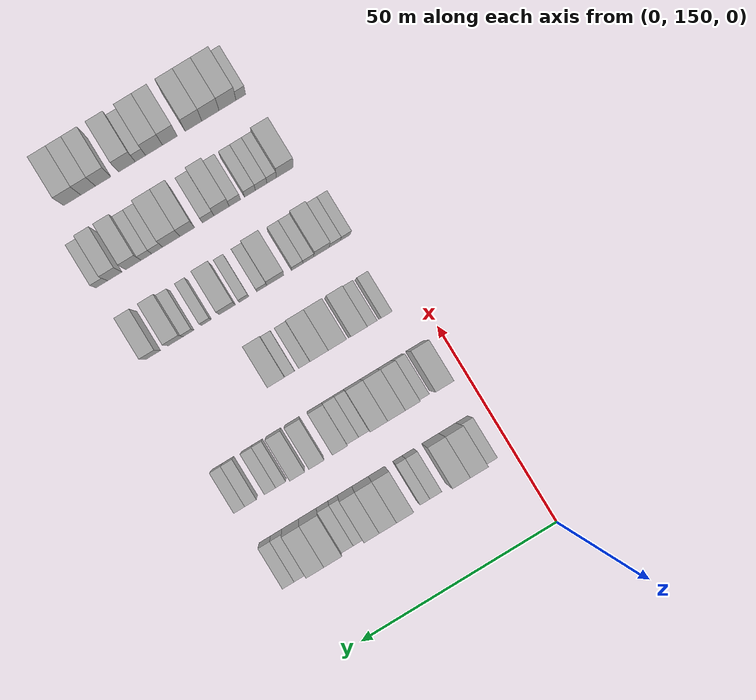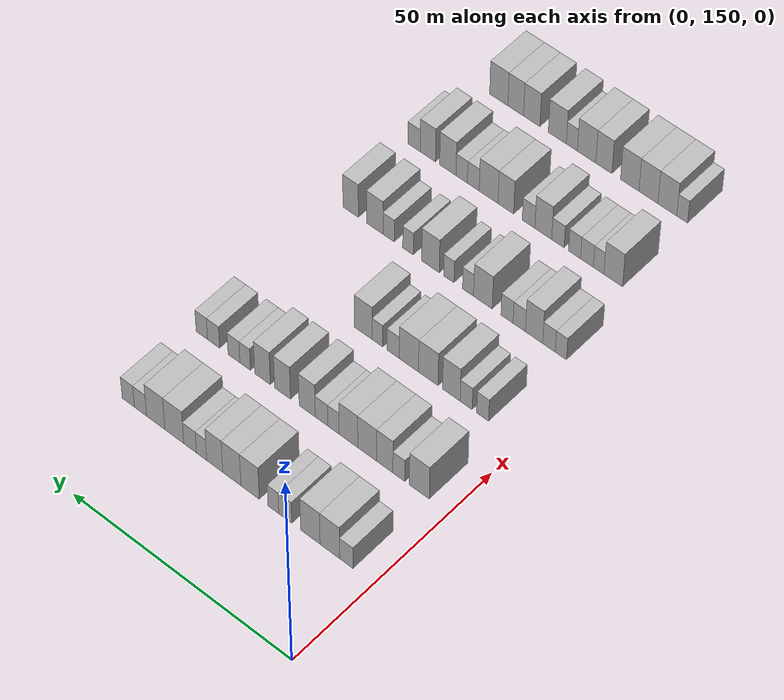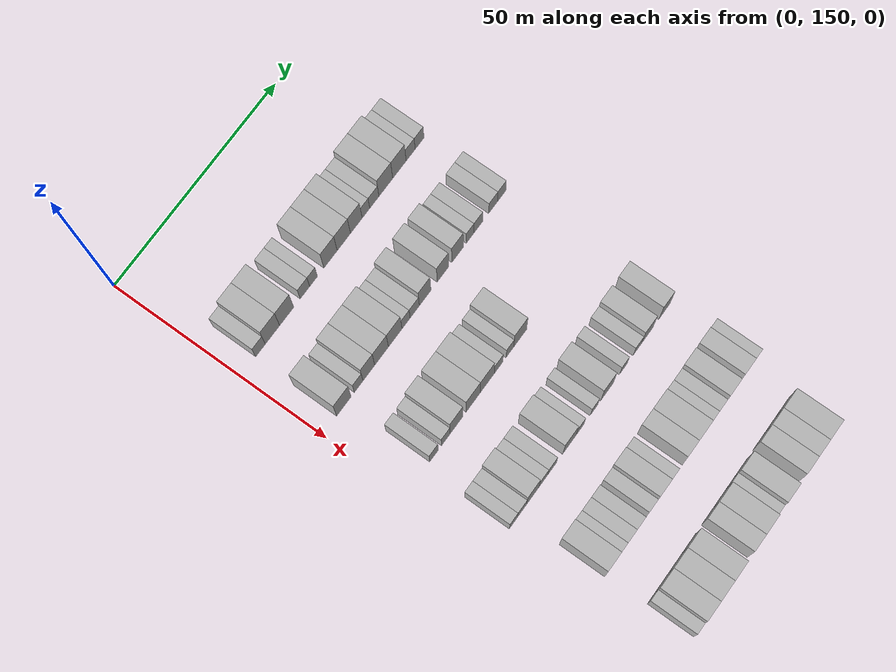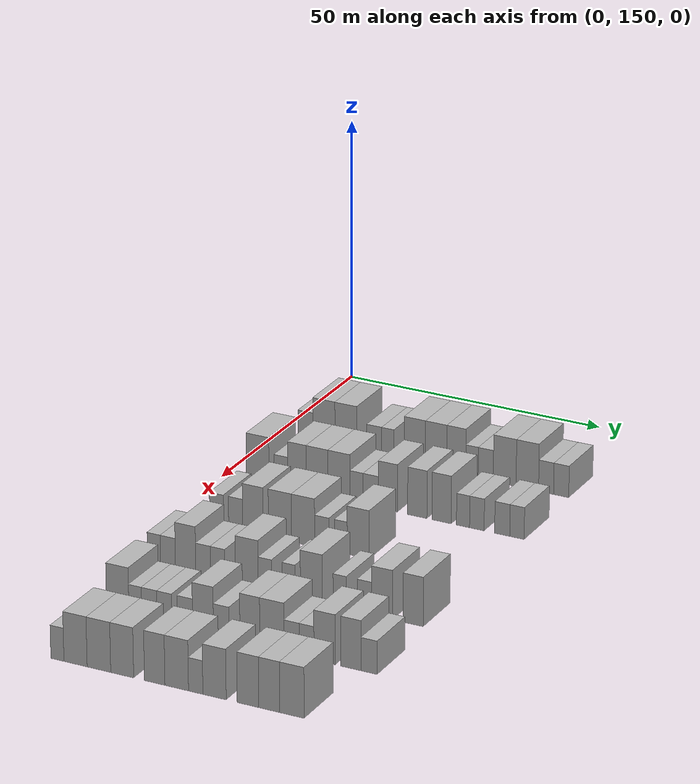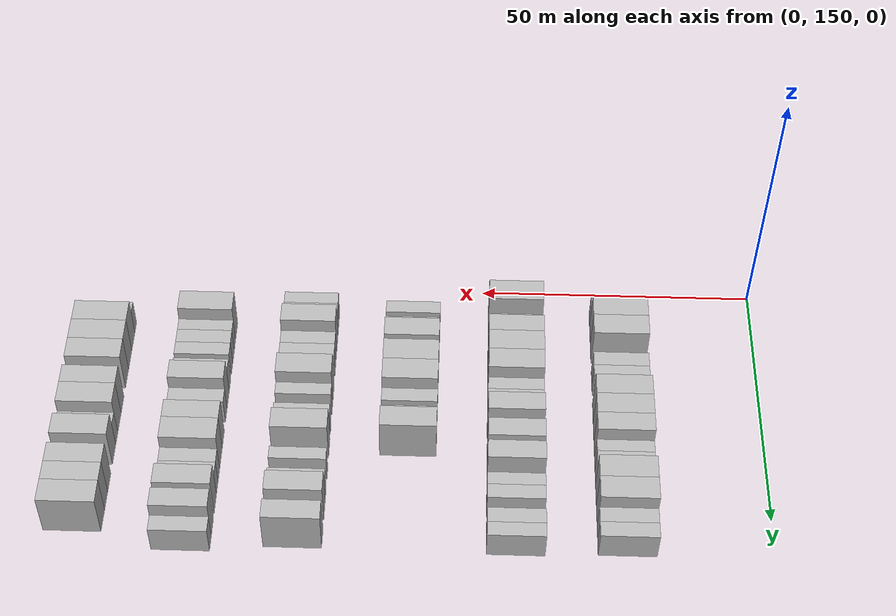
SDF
<sdf version="1.6">
 <world name="default">
  <model name="building_122">
   <static>1</static>
   <pose>25.0000 156.0968 0 0.000000 0.000000 0.000000</pose>
   <link name="link">
    <pose>0 0 3.00 0 0 0</pose>
    <collision name="collision"><geometry><box><size>10.0000 2.9768 6.0000</size></box></geometry></collision>
    <visual name="visual">
     <cast_shadows>0</cast_shadows>
     <geometry><box><size>10.0000 2.9768 6.0000</size></box></geometry>
     <material>
      <script>
       <uri>model://HANNAS_wall/materials/scripts</uri>
       <uri>model://HANNAS_wall/materials/textures</uri>
       <name>vrc/HANNAS_wall</name>
      </script>
     </material>
    </visual>
   </link>
  </model>
  <model name="building_123">
   <static>1</static>
   <pose>25.0000 159.7915 0 0.000000 0.000000 0.000000</pose>
   <link name="link">
    <pose>0 0 4.50 0 0 0</pose>
    <collision name="collision"><geometry><box><size>10.0000 4.4126 9.0000</size></box></geometry></collision>
    <visual name="visual">
     <cast_shadows>0</cast_shadows>
     <geometry><box><size>10.0000 4.4126 9.0000</size></box></geometry>
     <material>
      <script>
       <uri>model://HANNAS_wall/materials/scripts</uri>
       <uri>model://HANNAS_wall/materials/textures</uri>
       <name>vrc/HANNAS_wall</name>
      </script>
     </material>
    </visual>
   </link>
  </model>
  <model name="building_124">
   <static>1</static>
   <pose>25.0000 164.1842 0 0.000000 0.000000 0.000000</pose>
   <link name="link">
    <pose>0 0 4.50 0 0 0</pose>
    <collision name="collision"><geometry><box><size>10.0000 4.3728 9.0000</size></box></geometry></collision>
    <visual name="visual">
     <cast_shadows>0</cast_shadows>
     <geometry><box><size>10.0000 4.3728 9.0000</size></box></geometry>
     <material>
      <script>
       <uri>model://HANNAS_wall/materials/scripts</uri>
       <uri>model://HANNAS_wall/materials/textures</uri>
       <name>vrc/HANNAS_wall</name>
      </script>
     </material>
    </visual>
   </link>
  </model>
  <model name="building_125">
   <static>1</static>
   <pose>25.0000 169.8592 0 0.000000 0.000000 0.000000</pose>
   <link name="link">
    <pose>0 0 3.00 0 0 0</pose>
    <collision name="collision"><geometry><box><size>10.0000 2.9773 6.0000</size></box></geometry></collision>
    <visual name="visual">
     <cast_shadows>0</cast_shadows>
     <geometry><box><size>10.0000 2.9773 6.0000</size></box></geometry>
     <material>
      <script>
       <uri>model://HANNAS_wall/materials/scripts</uri>
       <uri>model://HANNAS_wall/materials/textures</uri>
       <name>vrc/HANNAS_wall</name>
      </script>
     </material>
    </visual>
   </link>
  </model>
  <model name="building_126">
   <static>1</static>
   <pose>25.0000 172.5687 0 0.000000 0.000000 0.000000</pose>
   <link name="link">
    <pose>0 0 3.00 0 0 0</pose>
    <collision name="collision"><geometry><box><size>10.0000 2.4417 6.0000</size></box></geometry></collision>
    <visual name="visual">
     <cast_shadows>0</cast_shadows>
     <geometry><box><size>10.0000 2.4417 6.0000</size></box></geometry>
     <material>
      <script>
       <uri>model://HANNAS_wall/materials/scripts</uri>
       <uri>model://HANNAS_wall/materials/textures</uri>
       <name>vrc/HANNAS_wall</name>
      </script>
     </material>
    </visual>
   </link>
  </model>
  <model name="building_127">
   <static>1</static>
   <pose>25.0000 177.8918 0 0.000000 0.000000 0.000000</pose>
   <link name="link">
    <pose>0 0 4.50 0 0 0</pose>
    <collision name="collision"><geometry><box><size>10.0000 4.2046 9.0000</size></box></geometry></collision>
    <visual name="visual">
     <cast_shadows>0</cast_shadows>
     <geometry><box><size>10.0000 4.2046 9.0000</size></box></geometry>
     <material>
      <script>
       <uri>model://HANNAS_wall/materials/scripts</uri>
       <uri>model://HANNAS_wall/materials/textures</uri>
       <name>vrc/HANNAS_wall</name>
      </script>
     </material>
    </visual>
   </link>
  </model>
  <model name="building_128">
   <static>1</static>
   <pose>25.0000 182.0966 0 0.000000 0.000000 0.000000</pose>
   <link name="link">
    <pose>0 0 4.50 0 0 0</pose>
    <collision name="collision"><geometry><box><size>10.0000 4.2050 9.0000</size></box></geometry></collision>
    <visual name="visual">
     <cast_shadows>0</cast_shadows>
     <geometry><box><size>10.0000 4.2050 9.0000</size></box></geometry>
     <material>
      <script>
       <uri>model://HANNAS_wall/materials/scripts</uri>
       <uri>model://HANNAS_wall/materials/textures</uri>
       <name>vrc/HANNAS_wall</name>
      </script>
     </material>
    </visual>
   </link>
  </model>
  <model name="building_129">
   <static>1</static>
   <pose>25.0000 186.0644 0 0.000000 0.000000 0.000000</pose>
   <link name="link">
    <pose>0 0 4.50 0 0 0</pose>
    <collision name="collision"><geometry><box><size>10.0000 3.7307 9.0000</size></box></geometry></collision>
    <visual name="visual">
     <cast_shadows>0</cast_shadows>
     <geometry><box><size>10.0000 3.7307 9.0000</size></box></geometry>
     <material>
      <script>
       <uri>model://HANNAS_wall/materials/scripts</uri>
       <uri>model://HANNAS_wall/materials/textures</uri>
       <name>vrc/HANNAS_wall</name>
      </script>
     </material>
    </visual>
   </link>
  </model>
  <model name="building_130">
   <static>1</static>
   <pose>25.0000 189.1353 0 0.000000 0.000000 0.000000</pose>
   <link name="link">
    <pose>0 0 3.00 0 0 0</pose>
    <collision name="collision"><geometry><box><size>10.0000 2.4113 6.0000</size></box></geometry></collision>
    <visual name="visual">
     <cast_shadows>0</cast_shadows>
     <geometry><box><size>10.0000 2.4113 6.0000</size></box></geometry>
     <material>
      <script>
       <uri>model://HANNAS_wall/materials/scripts</uri>
       <uri>model://HANNAS_wall/materials/textures</uri>
       <name>vrc/HANNAS_wall</name>
      </script>
     </material>
    </visual>
   </link>
  </model>
  <model name="building_131">
   <static>1</static>
   <pose>25.0000 191.8187 0 0.000000 0.000000 0.000000</pose>
   <link name="link">
    <pose>0 0 3.00 0 0 0</pose>
    <collision name="collision"><geometry><box><size>10.0000 2.9554 6.0000</size></box></geometry></collision>
    <visual name="visual">
     <cast_shadows>0</cast_shadows>
     <geometry><box><size>10.0000 2.9554 6.0000</size></box></geometry>
     <material>
      <script>
       <uri>model://HANNAS_wall/materials/scripts</uri>
       <uri>model://HANNAS_wall/materials/textures</uri>
       <name>vrc/HANNAS_wall</name>
      </script>
     </material>
    </visual>
   </link>
  </model>
  <model name="building_132">
   <static>1</static>
   <pose>25.0000 195.5114 0 0.000000 0.000000 0.000000</pose>
   <link name="link">
    <pose>0 0 4.50 0 0 0</pose>
    <collision name="collision"><geometry><box><size>10.0000 4.4300 9.0000</size></box></geometry></collision>
    <visual name="visual">
     <cast_shadows>0</cast_shadows>
     <geometry><box><size>10.0000 4.4300 9.0000</size></box></geometry>
     <material>
      <script>
       <uri>model://HANNAS_wall/materials/scripts</uri>
       <uri>model://HANNAS_wall/materials/textures</uri>
       <name>vrc/HANNAS_wall</name>
      </script>
     </material>
    </visual>
   </link>
  </model>
  <model name="building_133">
   <static>1</static>
   <pose>25.0000 199.8990 0 0.000000 0.000000 0.000000</pose>
   <link name="link">
    <pose>0 0 4.50 0 0 0</pose>
    <collision name="collision"><geometry><box><size>10.0000 4.3451 9.0000</size></box></geometry></collision>
    <visual name="visual">
     <cast_shadows>0</cast_shadows>
     <geometry><box><size>10.0000 4.3451 9.0000</size></box></geometry>
     <material>
      <script>
       <uri>model://HANNAS_wall/materials/scripts</uri>
       <uri>model://HANNAS_wall/materials/textures</uri>
       <name>vrc/HANNAS_wall</name>
      </script>
     </material>
    </visual>
   </link>
  </model>
  <model name="building_134">
   <static>1</static>
   <pose>25.0000 203.5275 0 0.000000 0.000000 0.000000</pose>
   <link name="link">
    <pose>0 0 3.00 0 0 0</pose>
    <collision name="collision"><geometry><box><size>10.0000 2.9119 6.0000</size></box></geometry></collision>
    <visual name="visual">
     <cast_shadows>0</cast_shadows>
     <geometry><box><size>10.0000 2.9119 6.0000</size></box></geometry>
     <material>
      <script>
       <uri>model://HANNAS_wall/materials/scripts</uri>
       <uri>model://HANNAS_wall/materials/textures</uri>
       <name>vrc/HANNAS_wall</name>
      </script>
     </material>
    </visual>
   </link>
  </model>
  <model name="building_135">
   <static>1</static>
   <pose>25.0000 206.4340 0 0.000000 0.000000 0.000000</pose>
   <link name="link">
    <pose>0 0 3.00 0 0 0</pose>
    <collision name="collision"><geometry><box><size>10.0000 2.9013 6.0000</size></box></geometry></collision>
    <visual name="visual">
     <cast_shadows>0</cast_shadows>
     <geometry><box><size>10.0000 2.9013 6.0000</size></box></geometry>
     <material>
      <script>
       <uri>model://HANNAS_wall/materials/scripts</uri>
       <uri>model://HANNAS_wall/materials/textures</uri>
       <name>vrc/HANNAS_wall</name>
      </script>
     </material>
    </visual>
   </link>
  </model>
  <model name="building_297">
   <static>1</static>
   <pose>44.0000 156.6351 0 0.000000 0.000000 0.000000</pose>
   <link name="link">
    <pose>0 0 4.50 0 0 0</pose>
    <collision name="collision"><geometry><box><size>10.0000 4.4826 9.0000</size></box></geometry></collision>
    <visual name="visual">
     <cast_shadows>0</cast_shadows>
     <geometry><box><size>10.0000 4.4826 9.0000</size></box></geometry>
     <material>
      <script>
       <uri>model://HANNAS_wall/materials/scripts</uri>
       <uri>model://HANNAS_wall/materials/textures</uri>
       <name>vrc/HANNAS_wall</name>
      </script>
     </material>
    </visual>
   </link>
  </model>
  <model name="building_298">
   <static>1</static>
   <pose>44.0000 161.2341 0 0.000000 0.000000 0.000000</pose>
   <link name="link">
    <pose>0 0 3.00 0 0 0</pose>
    <collision name="collision"><geometry><box><size>10.0000 2.7155 6.0000</size></box></geometry></collision>
    <visual name="visual">
     <cast_shadows>0</cast_shadows>
     <geometry><box><size>10.0000 2.7155 6.0000</size></box></geometry>
     <material>
      <script>
       <uri>model://HANNAS_wall/materials/scripts</uri>
       <uri>model://HANNAS_wall/materials/textures</uri>
       <name>vrc/HANNAS_wall</name>
      </script>
     </material>
    </visual>
   </link>
  </model>
  <model name="building_299">
   <static>1</static>
   <pose>44.0000 164.4146 0 0.000000 0.000000 0.000000</pose>
   <link name="link">
    <pose>0 0 4.50 0 0 0</pose>
    <collision name="collision"><geometry><box><size>10.0000 3.6454 9.0000</size></box></geometry></collision>
    <visual name="visual">
     <cast_shadows>0</cast_shadows>
     <geometry><box><size>10.0000 3.6454 9.0000</size></box></geometry>
     <material>
      <script>
       <uri>model://HANNAS_wall/materials/scripts</uri>
       <uri>model://HANNAS_wall/materials/textures</uri>
       <name>vrc/HANNAS_wall</name>
      </script>
     </material>
    </visual>
   </link>
  </model>
  <model name="building_300">
   <static>1</static>
   <pose>44.0000 168.3899 0 0.000000 0.000000 0.000000</pose>
   <link name="link">
    <pose>0 0 4.50 0 0 0</pose>
    <collision name="collision"><geometry><box><size>10.0000 4.3054 9.0000</size></box></geometry></collision>
    <visual name="visual">
     <cast_shadows>0</cast_shadows>
     <geometry><box><size>10.0000 4.3054 9.0000</size></box></geometry>
     <material>
      <script>
       <uri>model://HANNAS_wall/materials/scripts</uri>
       <uri>model://HANNAS_wall/materials/textures</uri>
       <name>vrc/HANNAS_wall</name>
      </script>
     </material>
    </visual>
   </link>
  </model>
  <model name="building_301">
   <static>1</static>
   <pose>44.0000 172.6813 0 0.000000 0.000000 0.000000</pose>
   <link name="link">
    <pose>0 0 4.50 0 0 0</pose>
    <collision name="collision"><geometry><box><size>10.0000 4.2774 9.0000</size></box></geometry></collision>
    <visual name="visual">
     <cast_shadows>0</cast_shadows>
     <geometry><box><size>10.0000 4.2774 9.0000</size></box></geometry>
     <material>
      <script>
       <uri>model://HANNAS_wall/materials/scripts</uri>
       <uri>model://HANNAS_wall/materials/textures</uri>
       <name>vrc/HANNAS_wall</name>
      </script>
     </material>
    </visual>
   </link>
  </model>
  <model name="building_302">
   <static>1</static>
   <pose>44.0000 176.1070 0 0.000000 0.000000 0.000000</pose>
   <link name="link">
    <pose>0 0 3.00 0 0 0</pose>
    <collision name="collision"><geometry><box><size>10.0000 2.5738 6.0000</size></box></geometry></collision>
    <visual name="visual">
     <cast_shadows>0</cast_shadows>
     <geometry><box><size>10.0000 2.5738 6.0000</size></box></geometry>
     <material>
      <script>
       <uri>model://HANNAS_wall/materials/scripts</uri>
       <uri>model://HANNAS_wall/materials/textures</uri>
       <name>vrc/HANNAS_wall</name>
      </script>
     </material>
    </visual>
   </link>
  </model>
  <model name="building_303">
   <static>1</static>
   <pose>44.0000 178.8618 0 0.000000 0.000000 0.000000</pose>
   <link name="link">
    <pose>0 0 3.00 0 0 0</pose>
    <collision name="collision"><geometry><box><size>10.0000 2.9358 6.0000</size></box></geometry></collision>
    <visual name="visual">
     <cast_shadows>0</cast_shadows>
     <geometry><box><size>10.0000 2.9358 6.0000</size></box></geometry>
     <material>
      <script>
       <uri>model://HANNAS_wall/materials/scripts</uri>
       <uri>model://HANNAS_wall/materials/textures</uri>
       <name>vrc/HANNAS_wall</name>
      </script>
     </material>
    </visual>
   </link>
  </model>
  <model name="building_304">
   <static>1</static>
   <pose>44.0000 182.1874 0 0.000000 0.000000 0.000000</pose>
   <link name="link">
    <pose>0 0 4.50 0 0 0</pose>
    <collision name="collision"><geometry><box><size>10.0000 3.7155 9.0000</size></box></geometry></collision>
    <visual name="visual">
     <cast_shadows>0</cast_shadows>
     <geometry><box><size>10.0000 3.7155 9.0000</size></box></geometry>
     <material>
      <script>
       <uri>model://HANNAS_wall/materials/scripts</uri>
       <uri>model://HANNAS_wall/materials/textures</uri>
       <name>vrc/HANNAS_wall</name>
      </script>
     </material>
    </visual>
   </link>
  </model>
  <model name="building_305">
   <static>1</static>
   <pose>44.0000 187.9041 0 0.000000 0.000000 0.000000</pose>
   <link name="link">
    <pose>0 0 4.50 0 0 0</pose>
    <collision name="collision"><geometry><box><size>10.0000 3.7179 9.0000</size></box></geometry></collision>
    <visual name="visual">
     <cast_shadows>0</cast_shadows>
     <geometry><box><size>10.0000 3.7179 9.0000</size></box></geometry>
     <material>
      <script>
       <uri>model://HANNAS_wall/materials/scripts</uri>
       <uri>model://HANNAS_wall/materials/textures</uri>
       <name>vrc/HANNAS_wall</name>
      </script>
     </material>
    </visual>
   </link>
  </model>
  <model name="building_306">
   <static>1</static>
   <pose>44.0000 192.6039 0 0.000000 0.000000 0.000000</pose>
   <link name="link">
    <pose>0 0 4.50 0 0 0</pose>
    <collision name="collision"><geometry><box><size>10.0000 3.6816 9.0000</size></box></geometry></collision>
    <visual name="visual">
     <cast_shadows>0</cast_shadows>
     <geometry><box><size>10.0000 3.6816 9.0000</size></box></geometry>
     <material>
      <script>
       <uri>model://HANNAS_wall/materials/scripts</uri>
       <uri>model://HANNAS_wall/materials/textures</uri>
       <name>vrc/HANNAS_wall</name>
      </script>
     </material>
    </visual>
   </link>
  </model>
  <model name="building_307">
   <static>1</static>
   <pose>44.0000 196.6941 0 0.000000 0.000000 0.000000</pose>
   <link name="link">
    <pose>0 0 3.00 0 0 0</pose>
    <collision name="collision"><geometry><box><size>10.0000 2.4988 6.0000</size></box></geometry></collision>
    <visual name="visual">
     <cast_shadows>0</cast_shadows>
     <geometry><box><size>10.0000 2.4988 6.0000</size></box></geometry>
     <material>
      <script>
       <uri>model://HANNAS_wall/materials/scripts</uri>
       <uri>model://HANNAS_wall/materials/textures</uri>
       <name>vrc/HANNAS_wall</name>
      </script>
     </material>
    </visual>
   </link>
  </model>
  <model name="building_308">
   <static>1</static>
   <pose>44.0000 199.3420 0 0.000000 0.000000 0.000000</pose>
   <link name="link">
    <pose>0 0 3.00 0 0 0</pose>
    <collision name="collision"><geometry><box><size>10.0000 2.7969 6.0000</size></box></geometry></collision>
    <visual name="visual">
     <cast_shadows>0</cast_shadows>
     <geometry><box><size>10.0000 2.7969 6.0000</size></box></geometry>
     <material>
      <script>
       <uri>model://HANNAS_wall/materials/scripts</uri>
       <uri>model://HANNAS_wall/materials/textures</uri>
       <name>vrc/HANNAS_wall</name>
      </script>
     </material>
    </visual>
   </link>
  </model>
  <model name="building_309">
   <static>1</static>
   <pose>44.0000 204.1811 0 0.000000 0.000000 0.000000</pose>
   <link name="link">
    <pose>0 0 3.00 0 0 0</pose>
    <collision name="collision"><geometry><box><size>10.0000 2.8813 6.0000</size></box></geometry></collision>
    <visual name="visual">
     <cast_shadows>0</cast_shadows>
     <geometry><box><size>10.0000 2.8813 6.0000</size></box></geometry>
     <material>
      <script>
       <uri>model://HANNAS_wall/materials/scripts</uri>
       <uri>model://HANNAS_wall/materials/textures</uri>
       <name>vrc/HANNAS_wall</name>
      </script>
     </material>
    </visual>
   </link>
  </model>
  <model name="building_310">
   <static>1</static>
   <pose>44.0000 206.9830 0 0.000000 0.000000 0.000000</pose>
   <link name="link">
    <pose>0 0 3.00 0 0 0</pose>
    <collision name="collision"><geometry><box><size>10.0000 2.7226 6.0000</size></box></geometry></collision>
    <visual name="visual">
     <cast_shadows>0</cast_shadows>
     <geometry><box><size>10.0000 2.7226 6.0000</size></box></geometry>
     <material>
      <script>
       <uri>model://HANNAS_wall/materials/scripts</uri>
       <uri>model://HANNAS_wall/materials/textures</uri>
       <name>vrc/HANNAS_wall</name>
      </script>
     </material>
    </visual>
   </link>
  </model>
  <model name="building_471">
   <static>1</static>
   <pose>63.0000 158.8477 0 0.000000 0.000000 0.000000</pose>
   <link name="link">
    <pose>0 0 3.00 0 0 0</pose>
    <collision name="collision"><geometry><box><size>10.0000 2.7128 6.0000</size></box></geometry></collision>
    <visual name="visual">
     <cast_shadows>0</cast_shadows>
     <geometry><box><size>10.0000 2.7128 6.0000</size></box></geometry>
     <material>
      <script>
       <uri>model://HANNAS_wall/materials/scripts</uri>
       <uri>model://HANNAS_wall/materials/textures</uri>
       <name>vrc/HANNAS_wall</name>
      </script>
     </material>
    </visual>
   </link>
  </model>
  <model name="building_472">
   <static>1</static>
   <pose>63.0000 162.5668 0 0.000000 0.000000 0.000000</pose>
   <link name="link">
    <pose>0 0 3.00 0 0 0</pose>
    <collision name="collision"><geometry><box><size>10.0000 2.7254 6.0000</size></box></geometry></collision>
    <visual name="visual">
     <cast_shadows>0</cast_shadows>
     <geometry><box><size>10.0000 2.7254 6.0000</size></box></geometry>
     <material>
      <script>
       <uri>model://HANNAS_wall/materials/scripts</uri>
       <uri>model://HANNAS_wall/materials/textures</uri>
       <name>vrc/HANNAS_wall</name>
      </script>
     </material>
    </visual>
   </link>
  </model>
  <model name="building_473">
   <static>1</static>
   <pose>63.0000 165.9402 0 0.000000 0.000000 0.000000</pose>
   <link name="link">
    <pose>0 0 4.50 0 0 0</pose>
    <collision name="collision"><geometry><box><size>10.0000 4.0216 9.0000</size></box></geometry></collision>
    <visual name="visual">
     <cast_shadows>0</cast_shadows>
     <geometry><box><size>10.0000 4.0216 9.0000</size></box></geometry>
     <material>
      <script>
       <uri>model://HANNAS_wall/materials/scripts</uri>
       <uri>model://HANNAS_wall/materials/textures</uri>
       <name>vrc/HANNAS_wall</name>
      </script>
     </material>
    </visual>
   </link>
  </model>
  <model name="building_474">
   <static>1</static>
   <pose>63.0000 171.1912 0 0.000000 0.000000 0.000000</pose>
   <link name="link">
    <pose>0 0 4.50 0 0 0</pose>
    <collision name="collision"><geometry><box><size>10.0000 4.4805 9.0000</size></box></geometry></collision>
    <visual name="visual">
     <cast_shadows>0</cast_shadows>
     <geometry><box><size>10.0000 4.4805 9.0000</size></box></geometry>
     <material>
      <script>
       <uri>model://HANNAS_wall/materials/scripts</uri>
       <uri>model://HANNAS_wall/materials/textures</uri>
       <name>vrc/HANNAS_wall</name>
      </script>
     </material>
    </visual>
   </link>
  </model>
  <model name="building_475">
   <static>1</static>
   <pose>63.0000 175.6522 0 0.000000 0.000000 0.000000</pose>
   <link name="link">
    <pose>0 0 4.50 0 0 0</pose>
    <collision name="collision"><geometry><box><size>10.0000 4.4414 9.0000</size></box></geometry></collision>
    <visual name="visual">
     <cast_shadows>0</cast_shadows>
     <geometry><box><size>10.0000 4.4414 9.0000</size></box></geometry>
     <material>
      <script>
       <uri>model://HANNAS_wall/materials/scripts</uri>
       <uri>model://HANNAS_wall/materials/textures</uri>
       <name>vrc/HANNAS_wall</name>
      </script>
     </material>
    </visual>
   </link>
  </model>
  <model name="building_476">
   <static>1</static>
   <pose>63.0000 179.2714 0 0.000000 0.000000 0.000000</pose>
   <link name="link">
    <pose>0 0 3.00 0 0 0</pose>
    <collision name="collision"><geometry><box><size>10.0000 2.7970 6.0000</size></box></geometry></collision>
    <visual name="visual">
     <cast_shadows>0</cast_shadows>
     <geometry><box><size>10.0000 2.7970 6.0000</size></box></geometry>
     <material>
      <script>
       <uri>model://HANNAS_wall/materials/scripts</uri>
       <uri>model://HANNAS_wall/materials/textures</uri>
       <name>vrc/HANNAS_wall</name>
      </script>
     </material>
    </visual>
   </link>
  </model>
  <model name="building_477">
   <static>1</static>
   <pose>63.0000 182.8991 0 0.000000 0.000000 0.000000</pose>
   <link name="link">
    <pose>0 0 3.00 0 0 0</pose>
    <collision name="collision"><geometry><box><size>10.0000 2.4584 6.0000</size></box></geometry></collision>
    <visual name="visual">
     <cast_shadows>0</cast_shadows>
     <geometry><box><size>10.0000 2.4584 6.0000</size></box></geometry>
     <material>
      <script>
       <uri>model://HANNAS_wall/materials/scripts</uri>
       <uri>model://HANNAS_wall/materials/textures</uri>
       <name>vrc/HANNAS_wall</name>
      </script>
     </material>
    </visual>
   </link>
  </model>
  <model name="building_478">
   <static>1</static>
   <pose>63.0000 186.2223 0 0.000000 0.000000 0.000000</pose>
   <link name="link">
    <pose>0 0 4.50 0 0 0</pose>
    <collision name="collision"><geometry><box><size>10.0000 4.1879 9.0000</size></box></geometry></collision>
    <visual name="visual">
     <cast_shadows>0</cast_shadows>
     <geometry><box><size>10.0000 4.1879 9.0000</size></box></geometry>
     <material>
      <script>
       <uri>model://HANNAS_wall/materials/scripts</uri>
       <uri>model://HANNAS_wall/materials/textures</uri>
       <name>vrc/HANNAS_wall</name>
      </script>
     </material>
    </visual>
   </link>
  </model>
  <model name="building_642">
   <static>1</static>
   <pose>82.0000 157.2323 0 0.000000 0.000000 0.000000</pose>
   <link name="link">
    <pose>0 0 3.00 0 0 0</pose>
    <collision name="collision"><geometry><box><size>10.0000 2.5330 6.0000</size></box></geometry></collision>
    <visual name="visual">
     <cast_shadows>0</cast_shadows>
     <geometry><box><size>10.0000 2.5330 6.0000</size></box></geometry>
     <material>
      <script>
       <uri>model://HANNAS_wall/materials/scripts</uri>
       <uri>model://HANNAS_wall/materials/textures</uri>
       <name>vrc/HANNAS_wall</name>
      </script>
     </material>
    </visual>
   </link>
  </model>
  <model name="building_643">
   <static>1</static>
   <pose>82.0000 159.9286 0 0.000000 0.000000 0.000000</pose>
   <link name="link">
    <pose>0 0 3.00 0 0 0</pose>
    <collision name="collision"><geometry><box><size>10.0000 2.8596 6.0000</size></box></geometry></collision>
    <visual name="visual">
     <cast_shadows>0</cast_shadows>
     <geometry><box><size>10.0000 2.8596 6.0000</size></box></geometry>
     <material>
      <script>
       <uri>model://HANNAS_wall/materials/scripts</uri>
       <uri>model://HANNAS_wall/materials/textures</uri>
       <name>vrc/HANNAS_wall</name>
      </script>
     </material>
    </visual>
   </link>
  </model>
  <model name="building_644">
   <static>1</static>
   <pose>82.0000 163.3198 0 0.000000 0.000000 0.000000</pose>
   <link name="link">
    <pose>0 0 4.50 0 0 0</pose>
    <collision name="collision"><geometry><box><size>10.0000 3.9228 9.0000</size></box></geometry></collision>
    <visual name="visual">
     <cast_shadows>0</cast_shadows>
     <geometry><box><size>10.0000 3.9228 9.0000</size></box></geometry>
     <material>
      <script>
       <uri>model://HANNAS_wall/materials/scripts</uri>
       <uri>model://HANNAS_wall/materials/textures</uri>
       <name>vrc/HANNAS_wall</name>
      </script>
     </material>
    </visual>
   </link>
  </model>
  <model name="building_645">
   <static>1</static>
   <pose>82.0000 166.6924 0 0.000000 0.000000 0.000000</pose>
   <link name="link">
    <pose>0 0 3.00 0 0 0</pose>
    <collision name="collision"><geometry><box><size>10.0000 2.8223 6.0000</size></box></geometry></collision>
    <visual name="visual">
     <cast_shadows>0</cast_shadows>
     <geometry><box><size>10.0000 2.8223 6.0000</size></box></geometry>
     <material>
      <script>
       <uri>model://HANNAS_wall/materials/scripts</uri>
       <uri>model://HANNAS_wall/materials/textures</uri>
       <name>vrc/HANNAS_wall</name>
      </script>
     </material>
    </visual>
   </link>
  </model>
  <model name="building_646">
   <static>1</static>
   <pose>82.0000 169.4991 0 0.000000 0.000000 0.000000</pose>
   <link name="link">
    <pose>0 0 3.00 0 0 0</pose>
    <collision name="collision"><geometry><box><size>10.0000 2.7911 6.0000</size></box></geometry></collision>
    <visual name="visual">
     <cast_shadows>0</cast_shadows>
     <geometry><box><size>10.0000 2.7911 6.0000</size></box></geometry>
     <material>
      <script>
       <uri>model://HANNAS_wall/materials/scripts</uri>
       <uri>model://HANNAS_wall/materials/textures</uri>
       <name>vrc/HANNAS_wall</name>
      </script>
     </material>
    </visual>
   </link>
  </model>
  <model name="building_647">
   <static>1</static>
   <pose>82.0000 175.0517 0 0.000000 0.000000 0.000000</pose>
   <link name="link">
    <pose>0 0 4.50 0 0 0</pose>
    <collision name="collision"><geometry><box><size>10.0000 4.3142 9.0000</size></box></geometry></collision>
    <visual name="visual">
     <cast_shadows>0</cast_shadows>
     <geometry><box><size>10.0000 4.3142 9.0000</size></box></geometry>
     <material>
      <script>
       <uri>model://HANNAS_wall/materials/scripts</uri>
       <uri>model://HANNAS_wall/materials/textures</uri>
       <name>vrc/HANNAS_wall</name>
      </script>
     </material>
    </visual>
   </link>
  </model>
  <model name="building_648">
   <static>1</static>
   <pose>82.0000 178.4894 0 0.000000 0.000000 0.000000</pose>
   <link name="link">
    <pose>0 0 3.00 0 0 0</pose>
    <collision name="collision"><geometry><box><size>10.0000 2.5612 6.0000</size></box></geometry></collision>
    <visual name="visual">
     <cast_shadows>0</cast_shadows>
     <geometry><box><size>10.0000 2.5612 6.0000</size></box></geometry>
     <material>
      <script>
       <uri>model://HANNAS_wall/materials/scripts</uri>
       <uri>model://HANNAS_wall/materials/textures</uri>
       <name>vrc/HANNAS_wall</name>
      </script>
     </material>
    </visual>
   </link>
  </model>
  <model name="building_649">
   <static>1</static>
   <pose>82.0000 182.9759 0 0.000000 0.000000 0.000000</pose>
   <link name="link">
    <pose>0 0 3.00 0 0 0</pose>
    <collision name="collision"><geometry><box><size>10.0000 2.4117 6.0000</size></box></geometry></collision>
    <visual name="visual">
     <cast_shadows>0</cast_shadows>
     <geometry><box><size>10.0000 2.4117 6.0000</size></box></geometry>
     <material>
      <script>
       <uri>model://HANNAS_wall/materials/scripts</uri>
       <uri>model://HANNAS_wall/materials/textures</uri>
       <name>vrc/HANNAS_wall</name>
      </script>
     </material>
    </visual>
   </link>
  </model>
  <model name="building_650">
   <static>1</static>
   <pose>82.0000 187.2466 0 0.000000 0.000000 0.000000</pose>
   <link name="link">
    <pose>0 0 4.50 0 0 0</pose>
    <collision name="collision"><geometry><box><size>10.0000 4.1299 9.0000</size></box></geometry></collision>
    <visual name="visual">
     <cast_shadows>0</cast_shadows>
     <geometry><box><size>10.0000 4.1299 9.0000</size></box></geometry>
     <material>
      <script>
       <uri>model://HANNAS_wall/materials/scripts</uri>
       <uri>model://HANNAS_wall/materials/textures</uri>
       <name>vrc/HANNAS_wall</name>
      </script>
     </material>
    </visual>
   </link>
  </model>
  <model name="building_651">
   <static>1</static>
   <pose>82.0000 192.5561 0 0.000000 0.000000 0.000000</pose>
   <link name="link">
    <pose>0 0 3.00 0 0 0</pose>
    <collision name="collision"><geometry><box><size>10.0000 2.4890 6.0000</size></box></geometry></collision>
    <visual name="visual">
     <cast_shadows>0</cast_shadows>
     <geometry><box><size>10.0000 2.4890 6.0000</size></box></geometry>
     <material>
      <script>
       <uri>model://HANNAS_wall/materials/scripts</uri>
       <uri>model://HANNAS_wall/materials/textures</uri>
       <name>vrc/HANNAS_wall</name>
      </script>
     </material>
    </visual>
   </link>
  </model>
  <model name="building_652">
   <static>1</static>
   <pose>82.0000 197.1388 0 0.000000 0.000000 0.000000</pose>
   <link name="link">
    <pose>0 0 3.00 0 0 0</pose>
    <collision name="collision"><geometry><box><size>10.0000 2.6766 6.0000</size></box></geometry></collision>
    <visual name="visual">
     <cast_shadows>0</cast_shadows>
     <geometry><box><size>10.0000 2.6766 6.0000</size></box></geometry>
     <material>
      <script>
       <uri>model://HANNAS_wall/materials/scripts</uri>
       <uri>model://HANNAS_wall/materials/textures</uri>
       <name>vrc/HANNAS_wall</name>
      </script>
     </material>
    </visual>
   </link>
  </model>
  <model name="building_653">
   <static>1</static>
   <pose>82.0000 200.4156 0 0.000000 0.000000 0.000000</pose>
   <link name="link">
    <pose>0 0 4.50 0 0 0</pose>
    <collision name="collision"><geometry><box><size>10.0000 3.8769 9.0000</size></box></geometry></collision>
    <visual name="visual">
     <cast_shadows>0</cast_shadows>
     <geometry><box><size>10.0000 3.8769 9.0000</size></box></geometry>
     <material>
      <script>
       <uri>model://HANNAS_wall/materials/scripts</uri>
       <uri>model://HANNAS_wall/materials/textures</uri>
       <name>vrc/HANNAS_wall</name>
      </script>
     </material>
    </visual>
   </link>
  </model>
  <model name="building_654">
   <static>1</static>
   <pose>82.0000 206.2035 0 0.000000 0.000000 0.000000</pose>
   <link name="link">
    <pose>0 0 4.50 0 0 0</pose>
    <collision name="collision"><geometry><box><size>10.0000 3.6989 9.0000</size></box></geometry></collision>
    <visual name="visual">
     <cast_shadows>0</cast_shadows>
     <geometry><box><size>10.0000 3.6989 9.0000</size></box></geometry>
     <material>
      <script>
       <uri>model://HANNAS_wall/materials/scripts</uri>
       <uri>model://HANNAS_wall/materials/textures</uri>
       <name>vrc/HANNAS_wall</name>
      </script>
     </material>
    </visual>
   </link>
  </model>
  <model name="building_810">
   <static>1</static>
   <pose>101.0000 161.0667 0 0.000000 0.000000 0.000000</pose>
   <link name="link">
    <pose>0 0 4.50 0 0 0</pose>
    <collision name="collision"><geometry><box><size>10.0000 4.2431 9.0000</size></box></geometry></collision>
    <visual name="visual">
     <cast_shadows>0</cast_shadows>
     <geometry><box><size>10.0000 4.2431 9.0000</size></box></geometry>
     <material>
      <script>
       <uri>model://HANNAS_wall/materials/scripts</uri>
       <uri>model://HANNAS_wall/materials/textures</uri>
       <name>vrc/HANNAS_wall</name>
      </script>
     </material>
    </visual>
   </link>
  </model>
  <model name="building_811">
   <static>1</static>
   <pose>101.0000 164.4001 0 0.000000 0.000000 0.000000</pose>
   <link name="link">
    <pose>0 0 3.00 0 0 0</pose>
    <collision name="collision"><geometry><box><size>10.0000 2.4239 6.0000</size></box></geometry></collision>
    <visual name="visual">
     <cast_shadows>0</cast_shadows>
     <geometry><box><size>10.0000 2.4239 6.0000</size></box></geometry>
     <material>
      <script>
       <uri>model://HANNAS_wall/materials/scripts</uri>
       <uri>model://HANNAS_wall/materials/textures</uri>
       <name>vrc/HANNAS_wall</name>
      </script>
     </material>
    </visual>
   </link>
  </model>
  <model name="building_812">
   <static>1</static>
   <pose>101.0000 167.0691 0 0.000000 0.000000 0.000000</pose>
   <link name="link">
    <pose>0 0 3.00 0 0 0</pose>
    <collision name="collision"><geometry><box><size>10.0000 2.9141 6.0000</size></box></geometry></collision>
    <visual name="visual">
     <cast_shadows>0</cast_shadows>
     <geometry><box><size>10.0000 2.9141 6.0000</size></box></geometry>
     <material>
      <script>
       <uri>model://HANNAS_wall/materials/scripts</uri>
       <uri>model://HANNAS_wall/materials/textures</uri>
       <name>vrc/HANNAS_wall</name>
      </script>
     </material>
    </visual>
   </link>
  </model>
  <model name="building_813">
   <static>1</static>
   <pose>101.0000 169.9203 0 0.000000 0.000000 0.000000</pose>
   <link name="link">
    <pose>0 0 3.00 0 0 0</pose>
    <collision name="collision"><geometry><box><size>10.0000 2.7881 6.0000</size></box></geometry></collision>
    <visual name="visual">
     <cast_shadows>0</cast_shadows>
     <geometry><box><size>10.0000 2.7881 6.0000</size></box></geometry>
     <material>
      <script>
       <uri>model://HANNAS_wall/materials/scripts</uri>
       <uri>model://HANNAS_wall/materials/textures</uri>
       <name>vrc/HANNAS_wall</name>
      </script>
     </material>
    </visual>
   </link>
  </model>
  <model name="building_814">
   <static>1</static>
   <pose>101.0000 173.7635 0 0.000000 0.000000 0.000000</pose>
   <link name="link">
    <pose>0 0 3.00 0 0 0</pose>
    <collision name="collision"><geometry><box><size>10.0000 2.8983 6.0000</size></box></geometry></collision>
    <visual name="visual">
     <cast_shadows>0</cast_shadows>
     <geometry><box><size>10.0000 2.8983 6.0000</size></box></geometry>
     <material>
      <script>
       <uri>model://HANNAS_wall/materials/scripts</uri>
       <uri>model://HANNAS_wall/materials/textures</uri>
       <name>vrc/HANNAS_wall</name>
      </script>
     </material>
    </visual>
   </link>
  </model>
  <model name="building_815">
   <static>1</static>
   <pose>101.0000 177.1648 0 0.000000 0.000000 0.000000</pose>
   <link name="link">
    <pose>0 0 4.50 0 0 0</pose>
    <collision name="collision"><geometry><box><size>10.0000 3.9043 9.0000</size></box></geometry></collision>
    <visual name="visual">
     <cast_shadows>0</cast_shadows>
     <geometry><box><size>10.0000 3.9043 9.0000</size></box></geometry>
     <material>
      <script>
       <uri>model://HANNAS_wall/materials/scripts</uri>
       <uri>model://HANNAS_wall/materials/textures</uri>
       <name>vrc/HANNAS_wall</name>
      </script>
     </material>
    </visual>
   </link>
  </model>
  <model name="building_816">
   <static>1</static>
   <pose>101.0000 180.5873 0 0.000000 0.000000 0.000000</pose>
   <link name="link">
    <pose>0 0 3.00 0 0 0</pose>
    <collision name="collision"><geometry><box><size>10.0000 2.9407 6.0000</size></box></geometry></collision>
    <visual name="visual">
     <cast_shadows>0</cast_shadows>
     <geometry><box><size>10.0000 2.9407 6.0000</size></box></geometry>
     <material>
      <script>
       <uri>model://HANNAS_wall/materials/scripts</uri>
       <uri>model://HANNAS_wall/materials/textures</uri>
       <name>vrc/HANNAS_wall</name>
      </script>
     </material>
    </visual>
   </link>
  </model>
  <model name="building_817">
   <static>1</static>
   <pose>101.0000 185.9001 0 0.000000 0.000000 0.000000</pose>
   <link name="link">
    <pose>0 0 4.50 0 0 0</pose>
    <collision name="collision"><geometry><box><size>10.0000 3.6850 9.0000</size></box></geometry></collision>
    <visual name="visual">
     <cast_shadows>0</cast_shadows>
     <geometry><box><size>10.0000 3.6850 9.0000</size></box></geometry>
     <material>
      <script>
       <uri>model://HANNAS_wall/materials/scripts</uri>
       <uri>model://HANNAS_wall/materials/textures</uri>
       <name>vrc/HANNAS_wall</name>
      </script>
     </material>
    </visual>
   </link>
  </model>
  <model name="building_818">
   <static>1</static>
   <pose>101.0000 189.9728 0 0.000000 0.000000 0.000000</pose>
   <link name="link">
    <pose>0 0 4.50 0 0 0</pose>
    <collision name="collision"><geometry><box><size>10.0000 4.4603 9.0000</size></box></geometry></collision>
    <visual name="visual">
     <cast_shadows>0</cast_shadows>
     <geometry><box><size>10.0000 4.4603 9.0000</size></box></geometry>
     <material>
      <script>
       <uri>model://HANNAS_wall/materials/scripts</uri>
       <uri>model://HANNAS_wall/materials/textures</uri>
       <name>vrc/HANNAS_wall</name>
      </script>
     </material>
    </visual>
   </link>
  </model>
  <model name="building_819">
   <static>1</static>
   <pose>101.0000 193.6024 0 0.000000 0.000000 0.000000</pose>
   <link name="link">
    <pose>0 0 3.00 0 0 0</pose>
    <collision name="collision"><geometry><box><size>10.0000 2.7989 6.0000</size></box></geometry></collision>
    <visual name="visual">
     <cast_shadows>0</cast_shadows>
     <geometry><box><size>10.0000 2.7989 6.0000</size></box></geometry>
     <material>
      <script>
       <uri>model://HANNAS_wall/materials/scripts</uri>
       <uri>model://HANNAS_wall/materials/textures</uri>
       <name>vrc/HANNAS_wall</name>
      </script>
     </material>
    </visual>
   </link>
  </model>
  <model name="building_820">
   <static>1</static>
   <pose>101.0000 196.3570 0 0.000000 0.000000 0.000000</pose>
   <link name="link">
    <pose>0 0 3.00 0 0 0</pose>
    <collision name="collision"><geometry><box><size>10.0000 2.7103 6.0000</size></box></geometry></collision>
    <visual name="visual">
     <cast_shadows>0</cast_shadows>
     <geometry><box><size>10.0000 2.7103 6.0000</size></box></geometry>
     <material>
      <script>
       <uri>model://HANNAS_wall/materials/scripts</uri>
       <uri>model://HANNAS_wall/materials/textures</uri>
       <name>vrc/HANNAS_wall</name>
      </script>
     </material>
    </visual>
   </link>
  </model>
  <model name="building_821">
   <static>1</static>
   <pose>101.0000 199.6677 0 0.000000 0.000000 0.000000</pose>
   <link name="link">
    <pose>0 0 4.50 0 0 0</pose>
    <collision name="collision"><geometry><box><size>10.0000 3.9112 9.0000</size></box></geometry></collision>
    <visual name="visual">
     <cast_shadows>0</cast_shadows>
     <geometry><box><size>10.0000 3.9112 9.0000</size></box></geometry>
     <material>
      <script>
       <uri>model://HANNAS_wall/materials/scripts</uri>
       <uri>model://HANNAS_wall/materials/textures</uri>
       <name>vrc/HANNAS_wall</name>
      </script>
     </material>
    </visual>
   </link>
  </model>
  <model name="building_822">
   <static>1</static>
   <pose>101.0000 204.4525 0 0.000000 0.000000 0.000000</pose>
   <link name="link">
    <pose>0 0 4.50 0 0 0</pose>
    <collision name="collision"><geometry><box><size>10.0000 3.6585 9.0000</size></box></geometry></collision>
    <visual name="visual">
     <cast_shadows>0</cast_shadows>
     <geometry><box><size>10.0000 3.6585 9.0000</size></box></geometry>
     <material>
      <script>
       <uri>model://HANNAS_wall/materials/scripts</uri>
       <uri>model://HANNAS_wall/materials/textures</uri>
       <name>vrc/HANNAS_wall</name>
      </script>
     </material>
    </visual>
   </link>
  </model>
  <model name="building_823">
   <static>1</static>
   <pose>101.0000 207.7614 0 0.000000 0.000000 0.000000</pose>
   <link name="link">
    <pose>0 0 3.00 0 0 0</pose>
    <collision name="collision"><geometry><box><size>10.0000 2.9593 6.0000</size></box></geometry></collision>
    <visual name="visual">
     <cast_shadows>0</cast_shadows>
     <geometry><box><size>10.0000 2.9593 6.0000</size></box></geometry>
     <material>
      <script>
       <uri>model://HANNAS_wall/materials/scripts</uri>
       <uri>model://HANNAS_wall/materials/textures</uri>
       <name>vrc/HANNAS_wall</name>
      </script>
     </material>
    </visual>
   </link>
  </model>
  <model name="building_985">
   <static>1</static>
   <pose>120.0000 160.6708 0 0.000000 0.000000 0.000000</pose>
   <link name="link">
    <pose>0 0 3.00 0 0 0</pose>
    <collision name="collision"><geometry><box><size>10.0000 2.4509 6.0000</size></box></geometry></collision>
    <visual name="visual">
     <cast_shadows>0</cast_shadows>
     <geometry><box><size>10.0000 2.4509 6.0000</size></box></geometry>
     <material>
      <script>
       <uri>model://HANNAS_wall/materials/scripts</uri>
       <uri>model://HANNAS_wall/materials/textures</uri>
       <name>vrc/HANNAS_wall</name>
      </script>
     </material>
    </visual>
   </link>
  </model>
  <model name="building_986">
   <static>1</static>
   <pose>120.0000 164.0672 0 0.000000 0.000000 0.000000</pose>
   <link name="link">
    <pose>0 0 4.50 0 0 0</pose>
    <collision name="collision"><geometry><box><size>10.0000 4.3419 9.0000</size></box></geometry></collision>
    <visual name="visual">
     <cast_shadows>0</cast_shadows>
     <geometry><box><size>10.0000 4.3419 9.0000</size></box></geometry>
     <material>
      <script>
       <uri>model://HANNAS_wall/materials/scripts</uri>
       <uri>model://HANNAS_wall/materials/textures</uri>
       <name>vrc/HANNAS_wall</name>
      </script>
     </material>
    </visual>
   </link>
  </model>
  <model name="building_987">
   <static>1</static>
   <pose>120.0000 168.4366 0 0.000000 0.000000 0.000000</pose>
   <link name="link">
    <pose>0 0 4.50 0 0 0</pose>
    <collision name="collision"><geometry><box><size>10.0000 4.3969 9.0000</size></box></geometry></collision>
    <visual name="visual">
     <cast_shadows>0</cast_shadows>
     <geometry><box><size>10.0000 4.3969 9.0000</size></box></geometry>
     <material>
      <script>
       <uri>model://HANNAS_wall/materials/scripts</uri>
       <uri>model://HANNAS_wall/materials/textures</uri>
       <name>vrc/HANNAS_wall</name>
      </script>
     </material>
    </visual>
   </link>
  </model>
  <model name="building_988">
   <static>1</static>
   <pose>120.0000 172.7656 0 0.000000 0.000000 0.000000</pose>
   <link name="link">
    <pose>0 0 4.50 0 0 0</pose>
    <collision name="collision"><geometry><box><size>10.0000 4.2612 9.0000</size></box></geometry></collision>
    <visual name="visual">
     <cast_shadows>0</cast_shadows>
     <geometry><box><size>10.0000 4.2612 9.0000</size></box></geometry>
     <material>
      <script>
       <uri>model://HANNAS_wall/materials/scripts</uri>
       <uri>model://HANNAS_wall/materials/textures</uri>
       <name>vrc/HANNAS_wall</name>
      </script>
     </material>
    </visual>
   </link>
  </model>
  <model name="building_989">
   <static>1</static>
   <pose>120.0000 178.7824 0 0.000000 0.000000 0.000000</pose>
   <link name="link">
    <pose>0 0 4.50 0 0 0</pose>
    <collision name="collision"><geometry><box><size>10.0000 3.7724 9.0000</size></box></geometry></collision>
    <visual name="visual">
     <cast_shadows>0</cast_shadows>
     <geometry><box><size>10.0000 3.7724 9.0000</size></box></geometry>
     <material>
      <script>
       <uri>model://HANNAS_wall/materials/scripts</uri>
       <uri>model://HANNAS_wall/materials/textures</uri>
       <name>vrc/HANNAS_wall</name>
      </script>
     </material>
    </visual>
   </link>
  </model>
  <model name="building_990">
   <static>1</static>
   <pose>120.0000 182.8321 0 0.000000 0.000000 0.000000</pose>
   <link name="link">
    <pose>0 0 4.50 0 0 0</pose>
    <collision name="collision"><geometry><box><size>10.0000 4.3270 9.0000</size></box></geometry></collision>
    <visual name="visual">
     <cast_shadows>0</cast_shadows>
     <geometry><box><size>10.0000 4.3270 9.0000</size></box></geometry>
     <material>
      <script>
       <uri>model://HANNAS_wall/materials/scripts</uri>
       <uri>model://HANNAS_wall/materials/textures</uri>
       <name>vrc/HANNAS_wall</name>
      </script>
     </material>
    </visual>
   </link>
  </model>
  <model name="building_991">
   <static>1</static>
   <pose>120.0000 186.3086 0 0.000000 0.000000 0.000000</pose>
   <link name="link">
    <pose>0 0 3.00 0 0 0</pose>
    <collision name="collision"><geometry><box><size>10.0000 2.6259 6.0000</size></box></geometry></collision>
    <visual name="visual">
     <cast_shadows>0</cast_shadows>
     <geometry><box><size>10.0000 2.6259 6.0000</size></box></geometry>
     <material>
      <script>
       <uri>model://HANNAS_wall/materials/scripts</uri>
       <uri>model://HANNAS_wall/materials/textures</uri>
       <name>vrc/HANNAS_wall</name>
      </script>
     </material>
    </visual>
   </link>
  </model>
  <model name="building_992">
   <static>1</static>
   <pose>120.0000 189.7485 0 0.000000 0.000000 0.000000</pose>
   <link name="link">
    <pose>0 0 4.50 0 0 0</pose>
    <collision name="collision"><geometry><box><size>10.0000 4.2540 9.0000</size></box></geometry></collision>
    <visual name="visual">
     <cast_shadows>0</cast_shadows>
     <geometry><box><size>10.0000 4.2540 9.0000</size></box></geometry>
     <material>
      <script>
       <uri>model://HANNAS_wall/materials/scripts</uri>
       <uri>model://HANNAS_wall/materials/textures</uri>
       <name>vrc/HANNAS_wall</name>
      </script>
     </material>
    </visual>
   </link>
  </model>
  <model name="building_993">
   <static>1</static>
   <pose>120.0000 195.8306 0 0.000000 0.000000 0.000000</pose>
   <link name="link">
    <pose>0 0 4.50 0 0 0</pose>
    <collision name="collision"><geometry><box><size>10.0000 3.9102 9.0000</size></box></geometry></collision>
    <visual name="visual">
     <cast_shadows>0</cast_shadows>
     <geometry><box><size>10.0000 3.9102 9.0000</size></box></geometry>
     <material>
      <script>
       <uri>model://HANNAS_wall/materials/scripts</uri>
       <uri>model://HANNAS_wall/materials/textures</uri>
       <name>vrc/HANNAS_wall</name>
      </script>
     </material>
    </visual>
   </link>
  </model>
  <model name="building_994">
   <static>1</static>
   <pose>120.0000 199.6611 0 0.000000 0.000000 0.000000</pose>
   <link name="link">
    <pose>0 0 4.50 0 0 0</pose>
    <collision name="collision"><geometry><box><size>10.0000 3.7507 9.0000</size></box></geometry></collision>
    <visual name="visual">
     <cast_shadows>0</cast_shadows>
     <geometry><box><size>10.0000 3.7507 9.0000</size></box></geometry>
     <material>
      <script>
       <uri>model://HANNAS_wall/materials/scripts</uri>
       <uri>model://HANNAS_wall/materials/textures</uri>
       <name>vrc/HANNAS_wall</name>
      </script>
     </material>
    </visual>
   </link>
  </model>
  <model name="building_995">
   <static>1</static>
   <pose>120.0000 203.7416 0 0.000000 0.000000 0.000000</pose>
   <link name="link">
    <pose>0 0 4.50 0 0 0</pose>
    <collision name="collision"><geometry><box><size>10.0000 4.4103 9.0000</size></box></geometry></collision>
    <visual name="visual">
     <cast_shadows>0</cast_shadows>
     <geometry><box><size>10.0000 4.4103 9.0000</size></box></geometry>
     <material>
      <script>
       <uri>model://HANNAS_wall/materials/scripts</uri>
       <uri>model://HANNAS_wall/materials/textures</uri>
       <name>vrc/HANNAS_wall</name>
      </script>
     </material>
    </visual>
   </link>
  </model>
 </world>
</sdf>
